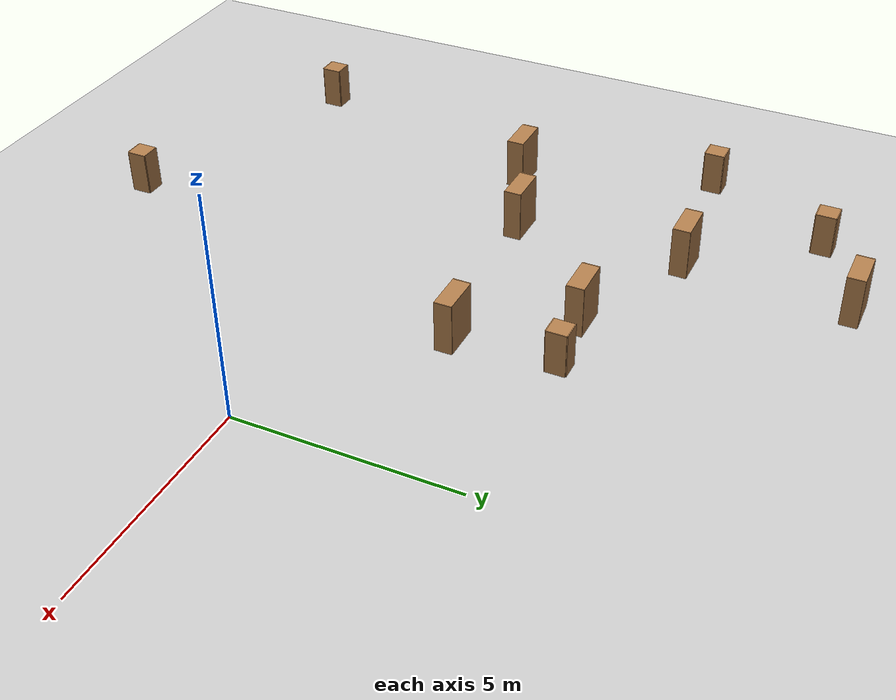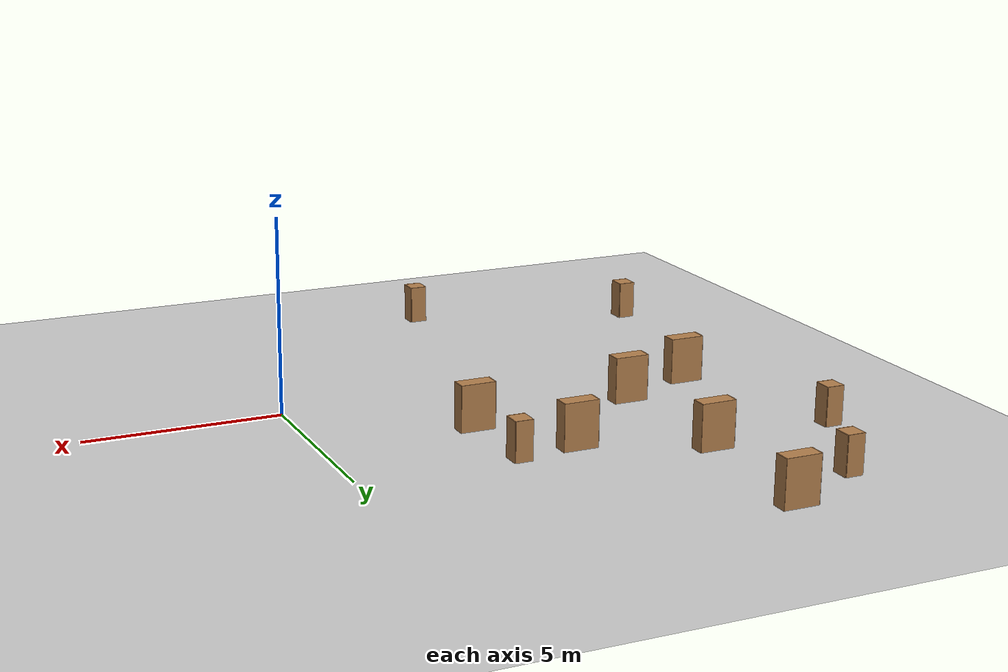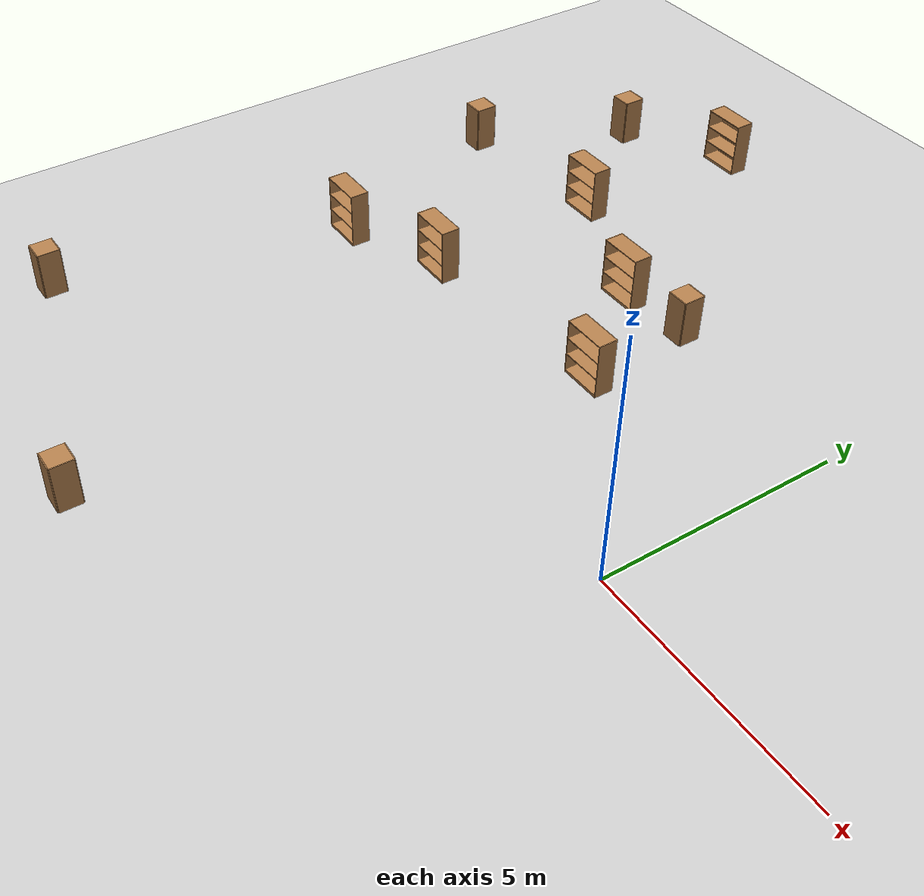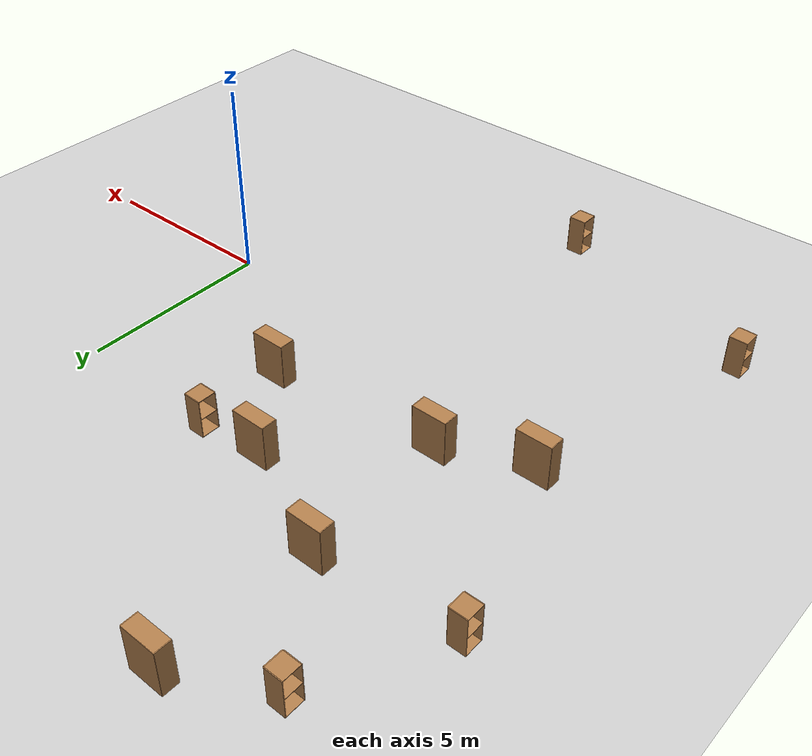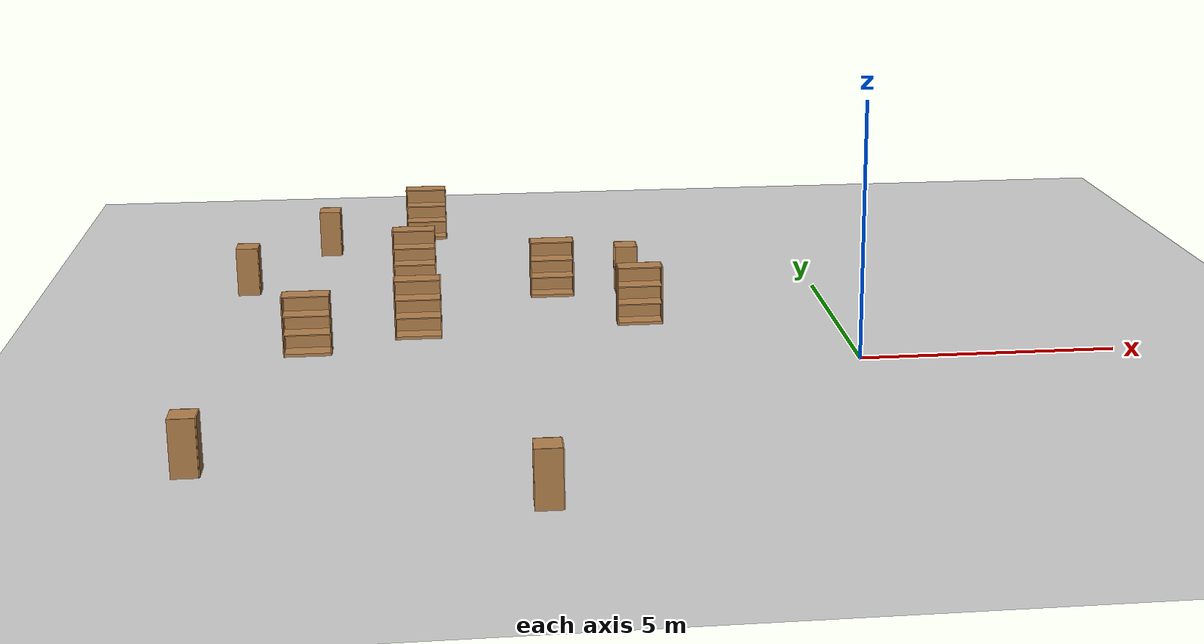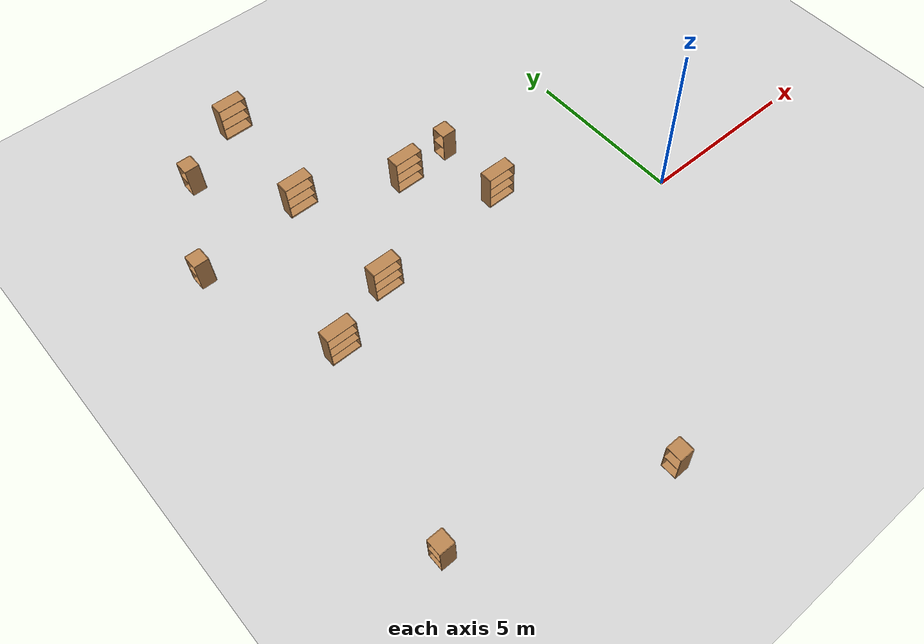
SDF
<sdf version="1.6">
 <world name="default">
  <model name="ground_plane">
   <static>1</static>
   <link name="link">
    <collision name="collision">
     <geometry><plane><normal>0 0 1</normal><size>100 100</size></plane></geometry>
     <surface><friction><ode><mu>100</mu><mu2>50</mu2></ode></friction></surface>
    </collision>
    <visual name="visual">
     <cast_shadows>0</cast_shadows>
     <geometry><plane><normal>0 0 1</normal><size>100 100</size></plane></geometry>
     <material>
      <script><uri>file://media/materials/scripts/gazebo.material</uri><name>Gazebo/Grey</name></script>
     </material>
    </visual>
   </link>
  </model>
  <model name="bookshelf">
   <static>1</static>
   <link name="link">
    <inertial><mass>1</mass></inertial>
    <collision name="back">
     <pose>0 0.005 0.6 0 -0 0</pose>
     <geometry><box><size>0.9 0.01 1.2</size></box></geometry>
    </collision>
    <visual name="visual1">
     <pose>0 0.005 0.6 0 -0 0</pose>
     <geometry><box><size>0.9 0.01 1.2</size></box></geometry>
     <material>
      <script><uri>file://media/materials/scripts/gazebo.material</uri><name>Gazebo/Wood</name></script>
     </material>
    </visual>
    <collision name="left_side">
     <pose>0.45 -0.195 0.6 0 -0 0</pose>
     <geometry><box><size>0.02 0.4 1.2</size></box></geometry>
    </collision>
    <visual name="visual2">
     <pose>0.45 -0.195 0.6 0 -0 0</pose>
     <geometry><box><size>0.02 0.4 1.2</size></box></geometry>
     <material>
      <script><uri>file://media/materials/scripts/gazebo.material</uri><name>Gazebo/Wood</name></script>
     </material>
    </visual>
    <collision name="right_side">
     <pose>-0.45 -0.195 0.6 0 -0 0</pose>
     <geometry><box><size>0.02 0.4 1.2</size></box></geometry>
    </collision>
    <visual name="visual3">
     <pose>-0.45 -0.195 0.6 0 -0 0</pose>
     <geometry><box><size>0.02 0.4 1.2</size></box></geometry>
     <material>
      <script><uri>file://media/materials/scripts/gazebo.material</uri><name>Gazebo/Wood</name></script>
     </material>
    </visual>
    <collision name="bottom">
     <pose>0 -0.195 0.03 0 -0 0</pose>
     <geometry><box><size>0.88 0.4 0.06</size></box></geometry>
    </collision>
    <visual name="visual4">
     <pose>0 -0.195 0.03 0 -0 0</pose>
     <geometry><box><size>0.88 0.4 0.06</size></box></geometry>
     <material>
      <script><uri>file://media/materials/scripts/gazebo.material</uri><name>Gazebo/Wood</name></script>
     </material>
    </visual>
    <collision name="top">
     <pose>0 -0.195 1.19 0 -0 0</pose>
     <geometry><box><size>0.88 0.4 0.02</size></box></geometry>
    </collision>
    <visual name="visual5">
     <pose>0 -0.195 1.19 0 -0 0</pose>
     <geometry><box><size>0.88 0.4 0.02</size></box></geometry>
     <material>
      <script><uri>file://media/materials/scripts/gazebo.material</uri><name>Gazebo/Wood</name></script>
     </material>
    </visual>
    <collision name="low_shelf">
     <pose>0 -0.195 0.43 0 -0 0</pose>
     <geometry><box><size>0.88 0.4 0.02</size></box></geometry>
    </collision>
    <visual name="visual6">
     <pose>0 -0.195 0.43 0 -0 0</pose>
     <geometry><box><size>0.88 0.4 0.02</size></box></geometry>
     <material>
      <script><uri>file://media/materials/scripts/gazebo.material</uri><name>Gazebo/Wood</name></script>
     </material>
    </visual>
    <collision name="high_shelf">
     <pose>0 -0.195 0.8 0 -0 0</pose>
     <geometry><box><size>0.88 0.4 0.02</size></box></geometry>
    </collision>
    <visual name="visual7">
     <pose>0 -0.195 0.8 0 -0 0</pose>
     <geometry><box><size>0.88 0.4 0.02</size></box></geometry>
     <material>
      <script><uri>file://media/materials/scripts/gazebo.material</uri><name>Gazebo/Wood</name></script>
     </material>
    </visual>
   </link>
   <pose>-8.52766 6.49554 0 0 -0 0</pose>
  </model>
  <model name="bookshelf_0">
   <static>1</static>
   <link name="link">
    <inertial><mass>1</mass></inertial>
    <collision name="back">
     <pose>0 0.005 0.6 0 -0 0</pose>
     <geometry><box><size>0.9 0.01 1.2</size></box></geometry>
    </collision>
    <visual name="visual1">
     <pose>0 0.005 0.6 0 -0 0</pose>
     <geometry><box><size>0.9 0.01 1.2</size></box></geometry>
     <material>
      <script><uri>file://media/materials/scripts/gazebo.material</uri><name>Gazebo/Wood</name></script>
     </material>
    </visual>
    <collision name="left_side">
     <pose>0.45 -0.195 0.6 0 -0 0</pose>
     <geometry><box><size>0.02 0.4 1.2</size></box></geometry>
    </collision>
    <visual name="visual2">
     <pose>0.45 -0.195 0.6 0 -0 0</pose>
     <geometry><box><size>0.02 0.4 1.2</size></box></geometry>
     <material>
      <script><uri>file://media/materials/scripts/gazebo.material</uri><name>Gazebo/Wood</name></script>
     </material>
    </visual>
    <collision name="right_side">
     <pose>-0.45 -0.195 0.6 0 -0 0</pose>
     <geometry><box><size>0.02 0.4 1.2</size></box></geometry>
    </collision>
    <visual name="visual3">
     <pose>-0.45 -0.195 0.6 0 -0 0</pose>
     <geometry><box><size>0.02 0.4 1.2</size></box></geometry>
     <material>
      <script><uri>file://media/materials/scripts/gazebo.material</uri><name>Gazebo/Wood</name></script>
     </material>
    </visual>
    <collision name="bottom">
     <pose>0 -0.195 0.03 0 -0 0</pose>
     <geometry><box><size>0.88 0.4 0.06</size></box></geometry>
    </collision>
    <visual name="visual4">
     <pose>0 -0.195 0.03 0 -0 0</pose>
     <geometry><box><size>0.88 0.4 0.06</size></box></geometry>
     <material>
      <script><uri>file://media/materials/scripts/gazebo.material</uri><name>Gazebo/Wood</name></script>
     </material>
    </visual>
    <collision name="top">
     <pose>0 -0.195 1.19 0 -0 0</pose>
     <geometry><box><size>0.88 0.4 0.02</size></box></geometry>
    </collision>
    <visual name="visual5">
     <pose>0 -0.195 1.19 0 -0 0</pose>
     <geometry><box><size>0.88 0.4 0.02</size></box></geometry>
     <material>
      <script><uri>file://media/materials/scripts/gazebo.material</uri><name>Gazebo/Wood</name></script>
     </material>
    </visual>
    <collision name="low_shelf">
     <pose>0 -0.195 0.43 0 -0 0</pose>
     <geometry><box><size>0.88 0.4 0.02</size></box></geometry>
    </collision>
    <visual name="visual6">
     <pose>0 -0.195 0.43 0 -0 0</pose>
     <geometry><box><size>0.88 0.4 0.02</size></box></geometry>
     <material>
      <script><uri>file://media/materials/scripts/gazebo.material</uri><name>Gazebo/Wood</name></script>
     </material>
    </visual>
    <collision name="high_shelf">
     <pose>0 -0.195 0.8 0 -0 0</pose>
     <geometry><box><size>0.88 0.4 0.02</size></box></geometry>
    </collision>
    <visual name="visual7">
     <pose>0 -0.195 0.8 0 -0 0</pose>
     <geometry><box><size>0.88 0.4 0.02</size></box></geometry>
     <material>
      <script><uri>file://media/materials/scripts/gazebo.material</uri><name>Gazebo/Wood</name></script>
     </material>
    </visual>
   </link>
   <pose>-8.40442 2.58916 0 0 -0 0</pose>
  </model>
  <model name="bookshelf_1">
   <static>1</static>
   <link name="link">
    <inertial><mass>1</mass></inertial>
    <collision name="back">
     <pose>0 0.005 0.6 0 -0 0</pose>
     <geometry><box><size>0.9 0.01 1.2</size></box></geometry>
    </collision>
    <visual name="visual1">
     <pose>0 0.005 0.6 0 -0 0</pose>
     <geometry><box><size>0.9 0.01 1.2</size></box></geometry>
     <material>
      <script><uri>file://media/materials/scripts/gazebo.material</uri><name>Gazebo/Wood</name></script>
     </material>
    </visual>
    <collision name="left_side">
     <pose>0.45 -0.195 0.6 0 -0 0</pose>
     <geometry><box><size>0.02 0.4 1.2</size></box></geometry>
    </collision>
    <visual name="visual2">
     <pose>0.45 -0.195 0.6 0 -0 0</pose>
     <geometry><box><size>0.02 0.4 1.2</size></box></geometry>
     <material>
      <script><uri>file://media/materials/scripts/gazebo.material</uri><name>Gazebo/Wood</name></script>
     </material>
    </visual>
    <collision name="right_side">
     <pose>-0.45 -0.195 0.6 0 -0 0</pose>
     <geometry><box><size>0.02 0.4 1.2</size></box></geometry>
    </collision>
    <visual name="visual3">
     <pose>-0.45 -0.195 0.6 0 -0 0</pose>
     <geometry><box><size>0.02 0.4 1.2</size></box></geometry>
     <material>
      <script><uri>file://media/materials/scripts/gazebo.material</uri><name>Gazebo/Wood</name></script>
     </material>
    </visual>
    <collision name="bottom">
     <pose>0 -0.195 0.03 0 -0 0</pose>
     <geometry><box><size>0.88 0.4 0.06</size></box></geometry>
    </collision>
    <visual name="visual4">
     <pose>0 -0.195 0.03 0 -0 0</pose>
     <geometry><box><size>0.88 0.4 0.06</size></box></geometry>
     <material>
      <script><uri>file://media/materials/scripts/gazebo.material</uri><name>Gazebo/Wood</name></script>
     </material>
    </visual>
    <collision name="top">
     <pose>0 -0.195 1.19 0 -0 0</pose>
     <geometry><box><size>0.88 0.4 0.02</size></box></geometry>
    </collision>
    <visual name="visual5">
     <pose>0 -0.195 1.19 0 -0 0</pose>
     <geometry><box><size>0.88 0.4 0.02</size></box></geometry>
     <material>
      <script><uri>file://media/materials/scripts/gazebo.material</uri><name>Gazebo/Wood</name></script>
     </material>
    </visual>
    <collision name="low_shelf">
     <pose>0 -0.195 0.43 0 -0 0</pose>
     <geometry><box><size>0.88 0.4 0.02</size></box></geometry>
    </collision>
    <visual name="visual6">
     <pose>0 -0.195 0.43 0 -0 0</pose>
     <geometry><box><size>0.88 0.4 0.02</size></box></geometry>
     <material>
      <script><uri>file://media/materials/scripts/gazebo.material</uri><name>Gazebo/Wood</name></script>
     </material>
    </visual>
    <collision name="high_shelf">
     <pose>0 -0.195 0.8 0 -0 0</pose>
     <geometry><box><size>0.88 0.4 0.02</size></box></geometry>
    </collision>
    <visual name="visual7">
     <pose>0 -0.195 0.8 0 -0 0</pose>
     <geometry><box><size>0.88 0.4 0.02</size></box></geometry>
     <material>
      <script><uri>file://media/materials/scripts/gazebo.material</uri><name>Gazebo/Wood</name></script>
     </material>
    </visual>
   </link>
   <pose>-5.61984 5.19296 0 0 -0 0</pose>
  </model>
  <model name="cabinet">
   <static>1</static>
   <link name="cabinet_bottom_plate">
    <inertial>
     <pose>0 0 -1 0 -0 0</pose>
     <inertia><ixx>2.05</ixx><ixy>0</ixy><ixz>0</ixz><iyy>2.05</iyy><iyz>0</iyz><izz>2.05</izz></inertia>
     <mass>25</mass>
    </inertial>
    <collision name="cabinet_bottom_plate_geom">
     <pose>0 0 0.01 0 -0 0</pose>
     <geometry><box><size>0.45 0.45 0.02</size></box></geometry>
    </collision>
    <visual name="cabinet_bottom_plate_geom_visual">
     <pose>0 0 0.01 0 -0 0</pose>
     <geometry><box><size>0.45 0.45 0.02</size></box></geometry>
     <material>
      <script><uri>file://media/materials/scripts/gazebo.material</uri><name>Gazebo/Wood</name></script>
     </material>
    </visual>
    <collision name="cabinet_bottom_plate_geom_cabinet_back_plate">
     <pose>0.235 0 0.51 0 -0 0</pose>
     <geometry><box><size>0.02 0.45 1.02</size></box></geometry>
    </collision>
    <visual name="cabinet_bottom_plate_geom_cabinet_back_plate_visual">
     <pose>0.235 0 0.51 0 -0 0</pose>
     <geometry><box><size>0.02 0.45 1.02</size></box></geometry>
     <material>
      <script><uri>file://media/materials/scripts/gazebo.material</uri><name>Gazebo/Wood</name></script>
     </material>
    </visual>
    <collision name="cabinet_bottom_plate_geom_cabinet_left_plate">
     <pose>0 0.235 0.51 0 -0 0</pose>
     <geometry><box><size>0.45 0.02 1.02</size></box></geometry>
    </collision>
    <visual name="cabinet_bottom_plate_geom_cabinet_left_plate_visual">
     <pose>0 0.235 0.51 0 -0 0</pose>
     <geometry><box><size>0.45 0.02 1.02</size></box></geometry>
     <material>
      <script><uri>file://media/materials/scripts/gazebo.material</uri><name>Gazebo/Wood</name></script>
     </material>
    </visual>
    <collision name="cabinet_bottom_plate_geom_cabinet_middle_plate">
     <pose>0 0 0.51 0 -0 0</pose>
     <geometry><box><size>0.45 0.45 0.02</size></box></geometry>
    </collision>
    <visual name="cabinet_bottom_plate_geom_cabinet_middle_plate_visual">
     <pose>0 0 0.51 0 -0 0</pose>
     <geometry><box><size>0.45 0.45 0.02</size></box></geometry>
     <material>
      <script><uri>file://media/materials/scripts/gazebo.material</uri><name>Gazebo/Wood</name></script>
     </material>
    </visual>
    <collision name="cabinet_bottom_plate_geom_cabinet_right_plate">
     <pose>0 -0.235 0.51 0 -0 0</pose>
     <geometry><box><size>0.45 0.02 1.02</size></box></geometry>
    </collision>
    <visual name="cabinet_bottom_plate_geom_cabinet_right_plate_visual">
     <pose>0 -0.235 0.51 0 -0 0</pose>
     <geometry><box><size>0.45 0.02 1.02</size></box></geometry>
     <material>
      <script><uri>file://media/materials/scripts/gazebo.material</uri><name>Gazebo/Wood</name></script>
     </material>
    </visual>
    <collision name="cabinet_bottom_plate_geom_cabinet_top_plate">
     <pose>0 0 1.01 0 -0 0</pose>
     <geometry><box><size>0.45 0.45 0.02</size></box></geometry>
    </collision>
    <visual name="cabinet_bottom_plate_geom_cabinet_top_plate_visual">
     <pose>0 0 1.01 0 -0 0</pose>
     <geometry><box><size>0.45 0.45 0.02</size></box></geometry>
     <material>
      <script><uri>file://media/materials/scripts/gazebo.material</uri><name>Gazebo/Wood</name></script>
     </material>
    </visual>
   </link>
   <pose>-4.04654 5.14765 0 0 -0 0</pose>
  </model>
  <model name="cabinet_2">
   <static>1</static>
   <link name="cabinet_bottom_plate">
    <inertial>
     <pose>0 0 -1 0 -0 0</pose>
     <inertia><ixx>2.05</ixx><ixy>0</ixy><ixz>0</ixz><iyy>2.05</iyy><iyz>0</iyz><izz>2.05</izz></inertia>
     <mass>25</mass>
    </inertial>
    <collision name="cabinet_bottom_plate_geom">
     <pose>0 0 0.01 0 -0 0</pose>
     <geometry><box><size>0.45 0.45 0.02</size></box></geometry>
    </collision>
    <visual name="cabinet_bottom_plate_geom_visual">
     <pose>0 0 0.01 0 -0 0</pose>
     <geometry><box><size>0.45 0.45 0.02</size></box></geometry>
     <material>
      <script><uri>file://media/materials/scripts/gazebo.material</uri><name>Gazebo/Wood</name></script>
     </material>
    </visual>
    <collision name="cabinet_bottom_plate_geom_cabinet_back_plate">
     <pose>0.235 0 0.51 0 -0 0</pose>
     <geometry><box><size>0.02 0.45 1.02</size></box></geometry>
    </collision>
    <visual name="cabinet_bottom_plate_geom_cabinet_back_plate_visual">
     <pose>0.235 0 0.51 0 -0 0</pose>
     <geometry><box><size>0.02 0.45 1.02</size></box></geometry>
     <material>
      <script><uri>file://media/materials/scripts/gazebo.material</uri><name>Gazebo/Wood</name></script>
     </material>
    </visual>
    <collision name="cabinet_bottom_plate_geom_cabinet_left_plate">
     <pose>0 0.235 0.51 0 -0 0</pose>
     <geometry><box><size>0.45 0.02 1.02</size></box></geometry>
    </collision>
    <visual name="cabinet_bottom_plate_geom_cabinet_left_plate_visual">
     <pose>0 0.235 0.51 0 -0 0</pose>
     <geometry><box><size>0.45 0.02 1.02</size></box></geometry>
     <material>
      <script><uri>file://media/materials/scripts/gazebo.material</uri><name>Gazebo/Wood</name></script>
     </material>
    </visual>
    <collision name="cabinet_bottom_plate_geom_cabinet_middle_plate">
     <pose>0 0 0.51 0 -0 0</pose>
     <geometry><box><size>0.45 0.45 0.02</size></box></geometry>
    </collision>
    <visual name="cabinet_bottom_plate_geom_cabinet_middle_plate_visual">
     <pose>0 0 0.51 0 -0 0</pose>
     <geometry><box><size>0.45 0.45 0.02</size></box></geometry>
     <material>
      <script><uri>file://media/materials/scripts/gazebo.material</uri><name>Gazebo/Wood</name></script>
     </material>
    </visual>
    <collision name="cabinet_bottom_plate_geom_cabinet_right_plate">
     <pose>0 -0.235 0.51 0 -0 0</pose>
     <geometry><box><size>0.45 0.02 1.02</size></box></geometry>
    </collision>
    <visual name="cabinet_bottom_plate_geom_cabinet_right_plate_visual">
     <pose>0 -0.235 0.51 0 -0 0</pose>
     <geometry><box><size>0.45 0.02 1.02</size></box></geometry>
     <material>
      <script><uri>file://media/materials/scripts/gazebo.material</uri><name>Gazebo/Wood</name></script>
     </material>
    </visual>
    <collision name="cabinet_bottom_plate_geom_cabinet_top_plate">
     <pose>0 0 1.01 0 -0 0</pose>
     <geometry><box><size>0.45 0.45 0.02</size></box></geometry>
    </collision>
    <visual name="cabinet_bottom_plate_geom_cabinet_top_plate_visual">
     <pose>0 0 1.01 0 -0 0</pose>
     <geometry><box><size>0.45 0.45 0.02</size></box></geometry>
     <material>
      <script><uri>file://media/materials/scripts/gazebo.material</uri><name>Gazebo/Wood</name></script>
     </material>
    </visual>
   </link>
   <pose>-6.30506 -6.48468 0 0 -0 0</pose>
  </model>
  <model name="bookshelf_8">
   <static>1</static>
   <link name="link">
    <inertial><mass>1</mass></inertial>
    <collision name="back">
     <pose>0 0.005 0.6 0 -0 0</pose>
     <geometry><box><size>0.9 0.01 1.2</size></box></geometry>
    </collision>
    <visual name="visual1">
     <pose>0 0.005 0.6 0 -0 0</pose>
     <geometry><box><size>0.9 0.01 1.2</size></box></geometry>
     <material>
      <script><uri>file://media/materials/scripts/gazebo.material</uri><name>Gazebo/Wood</name></script>
     </material>
    </visual>
    <collision name="left_side">
     <pose>0.45 -0.195 0.6 0 -0 0</pose>
     <geometry><box><size>0.02 0.4 1.2</size></box></geometry>
    </collision>
    <visual name="visual2">
     <pose>0.45 -0.195 0.6 0 -0 0</pose>
     <geometry><box><size>0.02 0.4 1.2</size></box></geometry>
     <material>
      <script><uri>file://media/materials/scripts/gazebo.material</uri><name>Gazebo/Wood</name></script>
     </material>
    </visual>
    <collision name="right_side">
     <pose>-0.45 -0.195 0.6 0 -0 0</pose>
     <geometry><box><size>0.02 0.4 1.2</size></box></geometry>
    </collision>
    <visual name="visual3">
     <pose>-0.45 -0.195 0.6 0 -0 0</pose>
     <geometry><box><size>0.02 0.4 1.2</size></box></geometry>
     <material>
      <script><uri>file://media/materials/scripts/gazebo.material</uri><name>Gazebo/Wood</name></script>
     </material>
    </visual>
    <collision name="bottom">
     <pose>0 -0.195 0.03 0 -0 0</pose>
     <geometry><box><size>0.88 0.4 0.06</size></box></geometry>
    </collision>
    <visual name="visual4">
     <pose>0 -0.195 0.03 0 -0 0</pose>
     <geometry><box><size>0.88 0.4 0.06</size></box></geometry>
     <material>
      <script><uri>file://media/materials/scripts/gazebo.material</uri><name>Gazebo/Wood</name></script>
     </material>
    </visual>
    <collision name="top">
     <pose>0 -0.195 1.19 0 -0 0</pose>
     <geometry><box><size>0.88 0.4 0.02</size></box></geometry>
    </collision>
    <visual name="visual5">
     <pose>0 -0.195 1.19 0 -0 0</pose>
     <geometry><box><size>0.88 0.4 0.02</size></box></geometry>
     <material>
      <script><uri>file://media/materials/scripts/gazebo.material</uri><name>Gazebo/Wood</name></script>
     </material>
    </visual>
    <collision name="low_shelf">
     <pose>0 -0.195 0.43 0 -0 0</pose>
     <geometry><box><size>0.88 0.4 0.02</size></box></geometry>
    </collision>
    <visual name="visual6">
     <pose>0 -0.195 0.43 0 -0 0</pose>
     <geometry><box><size>0.88 0.4 0.02</size></box></geometry>
     <material>
      <script><uri>file://media/materials/scripts/gazebo.material</uri><name>Gazebo/Wood</name></script>
     </material>
    </visual>
    <collision name="high_shelf">
     <pose>0 -0.195 0.8 0 -0 0</pose>
     <geometry><box><size>0.88 0.4 0.02</size></box></geometry>
    </collision>
    <visual name="visual7">
     <pose>0 -0.195 0.8 0 -0 0</pose>
     <geometry><box><size>0.88 0.4 0.02</size></box></geometry>
     <material>
      <script><uri>file://media/materials/scripts/gazebo.material</uri><name>Gazebo/Wood</name></script>
     </material>
    </visual>
   </link>
   <pose>-8.29594 10.2864 0 0 -0 0</pose>
  </model>
  <model name="cabinet_4">
   <static>1</static>
   <link name="cabinet_bottom_plate">
    <inertial>
     <pose>0 0 -1 0 -0 0</pose>
     <inertia><ixx>2.05</ixx><ixy>0</ixy><ixz>0</ixz><iyy>2.05</iyy><iyz>0</iyz><izz>2.05</izz></inertia>
     <mass>25</mass>
    </inertial>
    <collision name="cabinet_bottom_plate_geom">
     <pose>0 0 0.01 0 -0 0</pose>
     <geometry><box><size>0.45 0.45 0.02</size></box></geometry>
    </collision>
    <visual name="cabinet_bottom_plate_geom_visual">
     <pose>0 0 0.01 0 -0 0</pose>
     <geometry><box><size>0.45 0.45 0.02</size></box></geometry>
     <material>
      <script><uri>file://media/materials/scripts/gazebo.material</uri><name>Gazebo/Wood</name></script>
     </material>
    </visual>
    <collision name="cabinet_bottom_plate_geom_cabinet_back_plate">
     <pose>0.235 0 0.51 0 -0 0</pose>
     <geometry><box><size>0.02 0.45 1.02</size></box></geometry>
    </collision>
    <visual name="cabinet_bottom_plate_geom_cabinet_back_plate_visual">
     <pose>0.235 0 0.51 0 -0 0</pose>
     <geometry><box><size>0.02 0.45 1.02</size></box></geometry>
     <material>
      <script><uri>file://media/materials/scripts/gazebo.material</uri><name>Gazebo/Wood</name></script>
     </material>
    </visual>
    <collision name="cabinet_bottom_plate_geom_cabinet_left_plate">
     <pose>0 0.235 0.51 0 -0 0</pose>
     <geometry><box><size>0.45 0.02 1.02</size></box></geometry>
    </collision>
    <visual name="cabinet_bottom_plate_geom_cabinet_left_plate_visual">
     <pose>0 0.235 0.51 0 -0 0</pose>
     <geometry><box><size>0.45 0.02 1.02</size></box></geometry>
     <material>
      <script><uri>file://media/materials/scripts/gazebo.material</uri><name>Gazebo/Wood</name></script>
     </material>
    </visual>
    <collision name="cabinet_bottom_plate_geom_cabinet_middle_plate">
     <pose>0 0 0.51 0 -0 0</pose>
     <geometry><box><size>0.45 0.45 0.02</size></box></geometry>
    </collision>
    <visual name="cabinet_bottom_plate_geom_cabinet_middle_plate_visual">
     <pose>0 0 0.51 0 -0 0</pose>
     <geometry><box><size>0.45 0.45 0.02</size></box></geometry>
     <material>
      <script><uri>file://media/materials/scripts/gazebo.material</uri><name>Gazebo/Wood</name></script>
     </material>
    </visual>
    <collision name="cabinet_bottom_plate_geom_cabinet_right_plate">
     <pose>0 -0.235 0.51 0 -0 0</pose>
     <geometry><box><size>0.45 0.02 1.02</size></box></geometry>
    </collision>
    <visual name="cabinet_bottom_plate_geom_cabinet_right_plate_visual">
     <pose>0 -0.235 0.51 0 -0 0</pose>
     <geometry><box><size>0.45 0.02 1.02</size></box></geometry>
     <material>
      <script><uri>file://media/materials/scripts/gazebo.material</uri><name>Gazebo/Wood</name></script>
     </material>
    </visual>
    <collision name="cabinet_bottom_plate_geom_cabinet_top_plate">
     <pose>0 0 1.01 0 -0 0</pose>
     <geometry><box><size>0.45 0.45 0.02</size></box></geometry>
    </collision>
    <visual name="cabinet_bottom_plate_geom_cabinet_top_plate_visual">
     <pose>0 0 1.01 0 -0 0</pose>
     <geometry><box><size>0.45 0.45 0.02</size></box></geometry>
     <material>
      <script><uri>file://media/materials/scripts/gazebo.material</uri><name>Gazebo/Wood</name></script>
     </material>
    </visual>
   </link>
   <pose>-12.0198 5.92293 0 0 -0 0</pose>
  </model>
  <model name="bookshelf_13">
   <static>1</static>
   <link name="link">
    <inertial><mass>1</mass></inertial>
    <collision name="back">
     <pose>0 0.005 0.6 0 -0 0</pose>
     <geometry><box><size>0.9 0.01 1.2</size></box></geometry>
    </collision>
    <visual name="visual1">
     <pose>0 0.005 0.6 0 -0 0</pose>
     <geometry><box><size>0.9 0.01 1.2</size></box></geometry>
     <material>
      <script><uri>file://media/materials/scripts/gazebo.material</uri><name>Gazebo/Wood</name></script>
     </material>
    </visual>
    <collision name="left_side">
     <pose>0.45 -0.195 0.6 0 -0 0</pose>
     <geometry><box><size>0.02 0.4 1.2</size></box></geometry>
    </collision>
    <visual name="visual2">
     <pose>0.45 -0.195 0.6 0 -0 0</pose>
     <geometry><box><size>0.02 0.4 1.2</size></box></geometry>
     <material>
      <script><uri>file://media/materials/scripts/gazebo.material</uri><name>Gazebo/Wood</name></script>
     </material>
    </visual>
    <collision name="right_side">
     <pose>-0.45 -0.195 0.6 0 -0 0</pose>
     <geometry><box><size>0.02 0.4 1.2</size></box></geometry>
    </collision>
    <visual name="visual3">
     <pose>-0.45 -0.195 0.6 0 -0 0</pose>
     <geometry><box><size>0.02 0.4 1.2</size></box></geometry>
     <material>
      <script><uri>file://media/materials/scripts/gazebo.material</uri><name>Gazebo/Wood</name></script>
     </material>
    </visual>
    <collision name="bottom">
     <pose>0 -0.195 0.03 0 -0 0</pose>
     <geometry><box><size>0.88 0.4 0.06</size></box></geometry>
    </collision>
    <visual name="visual4">
     <pose>0 -0.195 0.03 0 -0 0</pose>
     <geometry><box><size>0.88 0.4 0.06</size></box></geometry>
     <material>
      <script><uri>file://media/materials/scripts/gazebo.material</uri><name>Gazebo/Wood</name></script>
     </material>
    </visual>
    <collision name="top">
     <pose>0 -0.195 1.19 0 -0 0</pose>
     <geometry><box><size>0.88 0.4 0.02</size></box></geometry>
    </collision>
    <visual name="visual5">
     <pose>0 -0.195 1.19 0 -0 0</pose>
     <geometry><box><size>0.88 0.4 0.02</size></box></geometry>
     <material>
      <script><uri>file://media/materials/scripts/gazebo.material</uri><name>Gazebo/Wood</name></script>
     </material>
    </visual>
    <collision name="low_shelf">
     <pose>0 -0.195 0.43 0 -0 0</pose>
     <geometry><box><size>0.88 0.4 0.02</size></box></geometry>
    </collision>
    <visual name="visual6">
     <pose>0 -0.195 0.43 0 -0 0</pose>
     <geometry><box><size>0.88 0.4 0.02</size></box></geometry>
     <material>
      <script><uri>file://media/materials/scripts/gazebo.material</uri><name>Gazebo/Wood</name></script>
     </material>
    </visual>
    <collision name="high_shelf">
     <pose>0 -0.195 0.8 0 -0 0</pose>
     <geometry><box><size>0.88 0.4 0.02</size></box></geometry>
    </collision>
    <visual name="visual7">
     <pose>0 -0.195 0.8 0 -0 0</pose>
     <geometry><box><size>0.88 0.4 0.02</size></box></geometry>
     <material>
      <script><uri>file://media/materials/scripts/gazebo.material</uri><name>Gazebo/Wood</name></script>
     </material>
    </visual>
   </link>
   <pose>-3.96806 3.02081 0 0 -0 0</pose>
  </model>
  <model name="bookshelf_14">
   <static>1</static>
   <link name="link">
    <inertial><mass>1</mass></inertial>
    <collision name="back">
     <pose>0 0.005 0.6 0 -0 0</pose>
     <geometry><box><size>0.9 0.01 1.2</size></box></geometry>
    </collision>
    <visual name="visual1">
     <pose>0 0.005 0.6 0 -0 0</pose>
     <geometry><box><size>0.9 0.01 1.2</size></box></geometry>
     <material>
      <script><uri>file://media/materials/scripts/gazebo.material</uri><name>Gazebo/Wood</name></script>
     </material>
    </visual>
    <collision name="left_side">
     <pose>0.45 -0.195 0.6 0 -0 0</pose>
     <geometry><box><size>0.02 0.4 1.2</size></box></geometry>
    </collision>
    <visual name="visual2">
     <pose>0.45 -0.195 0.6 0 -0 0</pose>
     <geometry><box><size>0.02 0.4 1.2</size></box></geometry>
     <material>
      <script><uri>file://media/materials/scripts/gazebo.material</uri><name>Gazebo/Wood</name></script>
     </material>
    </visual>
    <collision name="right_side">
     <pose>-0.45 -0.195 0.6 0 -0 0</pose>
     <geometry><box><size>0.02 0.4 1.2</size></box></geometry>
    </collision>
    <visual name="visual3">
     <pose>-0.45 -0.195 0.6 0 -0 0</pose>
     <geometry><box><size>0.02 0.4 1.2</size></box></geometry>
     <material>
      <script><uri>file://media/materials/scripts/gazebo.material</uri><name>Gazebo/Wood</name></script>
     </material>
    </visual>
    <collision name="bottom">
     <pose>0 -0.195 0.03 0 -0 0</pose>
     <geometry><box><size>0.88 0.4 0.06</size></box></geometry>
    </collision>
    <visual name="visual4">
     <pose>0 -0.195 0.03 0 -0 0</pose>
     <geometry><box><size>0.88 0.4 0.06</size></box></geometry>
     <material>
      <script><uri>file://media/materials/scripts/gazebo.material</uri><name>Gazebo/Wood</name></script>
     </material>
    </visual>
    <collision name="top">
     <pose>0 -0.195 1.19 0 -0 0</pose>
     <geometry><box><size>0.88 0.4 0.02</size></box></geometry>
    </collision>
    <visual name="visual5">
     <pose>0 -0.195 1.19 0 -0 0</pose>
     <geometry><box><size>0.88 0.4 0.02</size></box></geometry>
     <material>
      <script><uri>file://media/materials/scripts/gazebo.material</uri><name>Gazebo/Wood</name></script>
     </material>
    </visual>
    <collision name="low_shelf">
     <pose>0 -0.195 0.43 0 -0 0</pose>
     <geometry><box><size>0.88 0.4 0.02</size></box></geometry>
    </collision>
    <visual name="visual6">
     <pose>0 -0.195 0.43 0 -0 0</pose>
     <geometry><box><size>0.88 0.4 0.02</size></box></geometry>
     <material>
      <script><uri>file://media/materials/scripts/gazebo.material</uri><name>Gazebo/Wood</name></script>
     </material>
    </visual>
    <collision name="high_shelf">
     <pose>0 -0.195 0.8 0 -0 0</pose>
     <geometry><box><size>0.88 0.4 0.02</size></box></geometry>
    </collision>
    <visual name="visual7">
     <pose>0 -0.195 0.8 0 -0 0</pose>
     <geometry><box><size>0.88 0.4 0.02</size></box></geometry>
     <material>
      <script><uri>file://media/materials/scripts/gazebo.material</uri><name>Gazebo/Wood</name></script>
     </material>
    </visual>
   </link>
   <pose>-10.5075 1.74171 0 0 -0 0</pose>
  </model>
  <model name="cabinet_8">
   <static>1</static>
   <link name="cabinet_bottom_plate">
    <inertial>
     <pose>0 0 -1 0 -0 0</pose>
     <inertia><ixx>2.05</ixx><ixy>0</ixy><ixz>0</ixz><iyy>2.05</iyy><iyz>0</iyz><izz>2.05</izz></inertia>
     <mass>25</mass>
    </inertial>
    <collision name="cabinet_bottom_plate_geom">
     <pose>0 0 0.01 0 -0 0</pose>
     <geometry><box><size>0.45 0.45 0.02</size></box></geometry>
    </collision>
    <visual name="cabinet_bottom_plate_geom_visual">
     <pose>0 0 0.01 0 -0 0</pose>
     <geometry><box><size>0.45 0.45 0.02</size></box></geometry>
     <material>
      <script><uri>file://media/materials/scripts/gazebo.material</uri><name>Gazebo/Wood</name></script>
     </material>
    </visual>
    <collision name="cabinet_bottom_plate_geom_cabinet_back_plate">
     <pose>0.235 0 0.51 0 -0 0</pose>
     <geometry><box><size>0.02 0.45 1.02</size></box></geometry>
    </collision>
    <visual name="cabinet_bottom_plate_geom_cabinet_back_plate_visual">
     <pose>0.235 0 0.51 0 -0 0</pose>
     <geometry><box><size>0.02 0.45 1.02</size></box></geometry>
     <material>
      <script><uri>file://media/materials/scripts/gazebo.material</uri><name>Gazebo/Wood</name></script>
     </material>
    </visual>
    <collision name="cabinet_bottom_plate_geom_cabinet_left_plate">
     <pose>0 0.235 0.51 0 -0 0</pose>
     <geometry><box><size>0.45 0.02 1.02</size></box></geometry>
    </collision>
    <visual name="cabinet_bottom_plate_geom_cabinet_left_plate_visual">
     <pose>0 0.235 0.51 0 -0 0</pose>
     <geometry><box><size>0.45 0.02 1.02</size></box></geometry>
     <material>
      <script><uri>file://media/materials/scripts/gazebo.material</uri><name>Gazebo/Wood</name></script>
     </material>
    </visual>
    <collision name="cabinet_bottom_plate_geom_cabinet_middle_plate">
     <pose>0 0 0.51 0 -0 0</pose>
     <geometry><box><size>0.45 0.45 0.02</size></box></geometry>
    </collision>
    <visual name="cabinet_bottom_plate_geom_cabinet_middle_plate_visual">
     <pose>0 0 0.51 0 -0 0</pose>
     <geometry><box><size>0.45 0.45 0.02</size></box></geometry>
     <material>
      <script><uri>file://media/materials/scripts/gazebo.material</uri><name>Gazebo/Wood</name></script>
     </material>
    </visual>
    <collision name="cabinet_bottom_plate_geom_cabinet_right_plate">
     <pose>0 -0.235 0.51 0 -0 0</pose>
     <geometry><box><size>0.45 0.02 1.02</size></box></geometry>
    </collision>
    <visual name="cabinet_bottom_plate_geom_cabinet_right_plate_visual">
     <pose>0 -0.235 0.51 0 -0 0</pose>
     <geometry><box><size>0.45 0.02 1.02</size></box></geometry>
     <material>
      <script><uri>file://media/materials/scripts/gazebo.material</uri><name>Gazebo/Wood</name></script>
     </material>
    </visual>
    <collision name="cabinet_bottom_plate_geom_cabinet_top_plate">
     <pose>0 0 1.01 0 -0 0</pose>
     <geometry><box><size>0.45 0.45 0.02</size></box></geometry>
    </collision>
    <visual name="cabinet_bottom_plate_geom_cabinet_top_plate_visual">
     <pose>0 0 1.01 0 -0 0</pose>
     <geometry><box><size>0.45 0.45 0.02</size></box></geometry>
     <material>
      <script><uri>file://media/materials/scripts/gazebo.material</uri><name>Gazebo/Wood</name></script>
     </material>
    </visual>
   </link>
   <pose>-10.4559 8.94321 0 0 -0 0</pose>
  </model>
  <model name="cabinet_9">
   <static>1</static>
   <link name="cabinet_bottom_plate">
    <inertial>
     <pose>0 0 -1 0 -0 0</pose>
     <inertia><ixx>2.05</ixx><ixy>0</ixy><ixz>0</ixz><iyy>2.05</iyy><iyz>0</iyz><izz>2.05</izz></inertia>
     <mass>25</mass>
    </inertial>
    <collision name="cabinet_bottom_plate_geom">
     <pose>0 0 0.01 0 -0 0</pose>
     <geometry><box><size>0.45 0.45 0.02</size></box></geometry>
    </collision>
    <visual name="cabinet_bottom_plate_geom_visual">
     <pose>0 0 0.01 0 -0 0</pose>
     <geometry><box><size>0.45 0.45 0.02</size></box></geometry>
     <material>
      <script><uri>file://media/materials/scripts/gazebo.material</uri><name>Gazebo/Wood</name></script>
     </material>
    </visual>
    <collision name="cabinet_bottom_plate_geom_cabinet_back_plate">
     <pose>0.235 0 0.51 0 -0 0</pose>
     <geometry><box><size>0.02 0.45 1.02</size></box></geometry>
    </collision>
    <visual name="cabinet_bottom_plate_geom_cabinet_back_plate_visual">
     <pose>0.235 0 0.51 0 -0 0</pose>
     <geometry><box><size>0.02 0.45 1.02</size></box></geometry>
     <material>
      <script><uri>file://media/materials/scripts/gazebo.material</uri><name>Gazebo/Wood</name></script>
     </material>
    </visual>
    <collision name="cabinet_bottom_plate_geom_cabinet_left_plate">
     <pose>0 0.235 0.51 0 -0 0</pose>
     <geometry><box><size>0.45 0.02 1.02</size></box></geometry>
    </collision>
    <visual name="cabinet_bottom_plate_geom_cabinet_left_plate_visual">
     <pose>0 0.235 0.51 0 -0 0</pose>
     <geometry><box><size>0.45 0.02 1.02</size></box></geometry>
     <material>
      <script><uri>file://media/materials/scripts/gazebo.material</uri><name>Gazebo/Wood</name></script>
     </material>
    </visual>
    <collision name="cabinet_bottom_plate_geom_cabinet_middle_plate">
     <pose>0 0 0.51 0 -0 0</pose>
     <geometry><box><size>0.45 0.45 0.02</size></box></geometry>
    </collision>
    <visual name="cabinet_bottom_plate_geom_cabinet_middle_plate_visual">
     <pose>0 0 0.51 0 -0 0</pose>
     <geometry><box><size>0.45 0.45 0.02</size></box></geometry>
     <material>
      <script><uri>file://media/materials/scripts/gazebo.material</uri><name>Gazebo/Wood</name></script>
     </material>
    </visual>
    <collision name="cabinet_bottom_plate_geom_cabinet_right_plate">
     <pose>0 -0.235 0.51 0 -0 0</pose>
     <geometry><box><size>0.45 0.02 1.02</size></box></geometry>
    </collision>
    <visual name="cabinet_bottom_plate_geom_cabinet_right_plate_visual">
     <pose>0 -0.235 0.51 0 -0 0</pose>
     <geometry><box><size>0.45 0.02 1.02</size></box></geometry>
     <material>
      <script><uri>file://media/materials/scripts/gazebo.material</uri><name>Gazebo/Wood</name></script>
     </material>
    </visual>
    <collision name="cabinet_bottom_plate_geom_cabinet_top_plate">
     <pose>0 0 1.01 0 -0 0</pose>
     <geometry><box><size>0.45 0.45 0.02</size></box></geometry>
    </collision>
    <visual name="cabinet_bottom_plate_geom_cabinet_top_plate_visual">
     <pose>0 0 1.01 0 -0 0</pose>
     <geometry><box><size>0.45 0.45 0.02</size></box></geometry>
     <material>
      <script><uri>file://media/materials/scripts/gazebo.material</uri><name>Gazebo/Wood</name></script>
     </material>
    </visual>
   </link>
   <pose>-12.0541 -4.49107 0 0 -0 0</pose>
  </model>
 </world>
</sdf>
